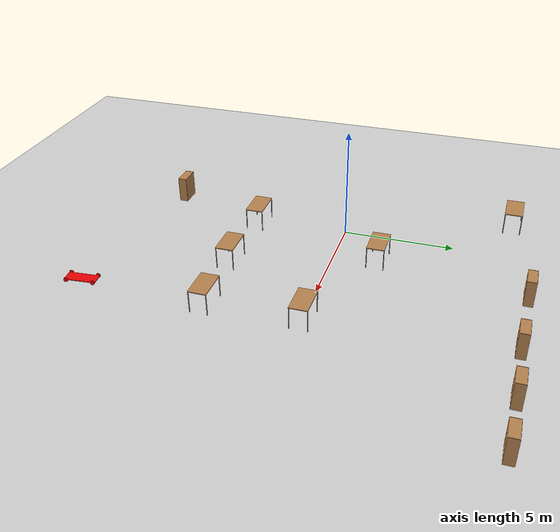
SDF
<sdf version="1.6">
 <world name="default">
  <model name="ground_plane">
   <static>1</static>
   <link name="link">
    <collision name="collision">
     <geometry><plane><normal>0 0 1</normal><size>100 100</size></plane></geometry>
     <surface><friction><ode><mu>100</mu><mu2>50</mu2></ode></friction></surface>
    </collision>
    <visual name="visual">
     <cast_shadows>0</cast_shadows>
     <geometry><plane><normal>0 0 1</normal><size>100 100</size></plane></geometry>
     <material>
      <script><uri>file://media/materials/scripts/gazebo.material</uri><name>Gazebo/Grey</name></script>
     </material>
    </visual>
   </link>
  </model>
  <model name="cart_2">
   <link name="link_0">
    <pose>0.002043 -1e-06 0 0 -0 0</pose>
    <inertial>
     <mass>0.0253075</mass>
     <inertia>
      <ixx>0.00062948</ixx>
      <ixy>0</ixy>
      <ixz>0</ixz>
      <iyy>0.00421325</iyy>
      <iyz>0</iyz>
      <izz>0.00483818</izz>
     </inertia>
    </inertial>
    <visual name="visual">
     <geometry><box><size>1.41306 0.545344 0.032853</size></box></geometry>
     <material>
      <lighting>1</lighting>
      <script><uri>file://media/materials/scripts/gazebo.material</uri><name>Gazebo/Grey</name></script>
      <ambient>0.9 0.002 0 1</ambient>
      <diffuse>0.9 0.002 0.01 0.9</diffuse>
      <specular>0.01 0.01 0.01 1</specular>
      <emissive>0 0 0 1</emissive>
      <shader type="vertex"><normal_map>__default__</normal_map></shader>
     </material>
    </visual>
    <collision name="collision">
     <geometry><box><size>1.41306 0.545344 0.032853</size></box></geometry>
     <surface>
      <friction>
       <ode><mu>1</mu><mu2>1</mu2><fdir1>0 0 0</fdir1><slip1>0</slip1><slip2>0</slip2></ode>
       <torsional>
        <coefficient>1</coefficient>
        <patch_radius>0</patch_radius>
        <surface_radius>0</surface_radius>
        <use_patch_radius>1</use_patch_radius>
        <ode><slip>0</slip></ode>
       </torsional>
      </friction>
      <bounce><restitution_coefficient>0</restitution_coefficient><threshold>1e+06</threshold></bounce>
      <contact>
       <collide_without_contact>0</collide_without_contact>
       <collide_without_contact_bitmask>1</collide_without_contact_bitmask>
       <collide_bitmask>1</collide_bitmask>
       <ode>
        <soft_cfm>0</soft_cfm>
        <soft_erp>0.2</soft_erp>
        <kp>1e+13</kp>
        <kd>1</kd>
        <max_vel>0.01</max_vel>
        <min_depth>0</min_depth>
       </ode>
       <bullet>
        <split_impulse>1</split_impulse>
        <split_impulse_penetration_threshold>-0.01</split_impulse_penetration_threshold>
        <soft_cfm>0</soft_cfm>
        <soft_erp>0.2</soft_erp>
        <kp>1e+13</kp>
        <kd>1</kd>
       </bullet>
      </contact>
     </surface>
    </collision>
   </link>
   <link name="link_1">
    <pose>0.598738 -0.289052 0 -1.55276 0 0</pose>
    <inertial>
     <mass>0.00115815</mass>
     <inertia>
      <ixx>2.95396e-06</ixx>
      <ixy>0</ixy>
      <ixz>0</ixz>
      <iyy>2.95396e-06</iyy>
      <iyz>0</iyz>
      <izz>5.7496e-06</izz>
     </inertia>
    </inertial>
    <visual name="visual">
     <geometry><cylinder><radius>0.0996172</radius><length>0.0291706</length></cylinder></geometry>
     <material>
      <lighting>1</lighting>
      <script><uri>file://media/materials/scripts/gazebo.material</uri><name>Gazebo/Grey</name></script>
      <ambient>0.9 0.002 0 1</ambient>
      <diffuse>0.9 0.002 0.01 0.9</diffuse>
      <specular>0.01 0.01 0.01 1</specular>
      <emissive>0 0 0 1</emissive>
      <shader type="vertex"><normal_map>__default__</normal_map></shader>
     </material>
    </visual>
    <collision name="collision">
     <geometry><cylinder><radius>0.099617</radius><length>0.029171</length></cylinder></geometry>
     <surface>
      <friction>
       <ode><mu>1</mu><mu2>1</mu2><fdir1>0 0 0</fdir1><slip1>0</slip1><slip2>0</slip2></ode>
       <torsional>
        <coefficient>1</coefficient>
        <patch_radius>0</patch_radius>
        <surface_radius>0</surface_radius>
        <use_patch_radius>1</use_patch_radius>
        <ode><slip>0</slip></ode>
       </torsional>
      </friction>
      <bounce><restitution_coefficient>0</restitution_coefficient><threshold>1e+06</threshold></bounce>
      <contact>
       <collide_without_contact>0</collide_without_contact>
       <collide_without_contact_bitmask>1</collide_without_contact_bitmask>
       <collide_bitmask>1</collide_bitmask>
       <ode>
        <soft_cfm>0</soft_cfm>
        <soft_erp>0.2</soft_erp>
        <kp>1e+13</kp>
        <kd>1</kd>
        <max_vel>0.01</max_vel>
        <min_depth>0</min_depth>
       </ode>
       <bullet>
        <split_impulse>1</split_impulse>
        <split_impulse_penetration_threshold>-0.01</split_impulse_penetration_threshold>
        <soft_cfm>0</soft_cfm>
        <soft_erp>0.2</soft_erp>
        <kp>1e+13</kp>
        <kd>1</kd>
       </bullet>
      </contact>
     </surface>
    </collision>
   </link>
   <link name="link_1_clone">
    <pose>-0.604867 0.289051 0 -1.55276 0 0</pose>
    <inertial>
     <mass>0.00115815</mass>
     <inertia>
      <ixx>2.95396e-06</ixx>
      <ixy>0</ixy>
      <ixz>0</ixz>
      <iyy>2.95396e-06</iyy>
      <iyz>0</iyz>
      <izz>5.7496e-06</izz>
     </inertia>
    </inertial>
    <visual name="visual">
     <geometry><cylinder><radius>0.0996172</radius><length>0.0291706</length></cylinder></geometry>
     <material>
      <lighting>1</lighting>
      <script><uri>file://media/materials/scripts/gazebo.material</uri><name>Gazebo/Grey</name></script>
      <ambient>0.9 0.002 0 1</ambient>
      <diffuse>0.9 0.002 0.01 0.9</diffuse>
      <specular>0.01 0.01 0.01 1</specular>
      <emissive>0 0 0 1</emissive>
      <shader type="vertex"><normal_map>__default__</normal_map></shader>
     </material>
    </visual>
    <collision name="collision">
     <geometry><cylinder><radius>0.099617</radius><length>0.029171</length></cylinder></geometry>
     <surface>
      <friction>
       <ode><mu>1</mu><mu2>1</mu2><fdir1>0 0 0</fdir1><slip1>0</slip1><slip2>0</slip2></ode>
       <torsional>
        <coefficient>1</coefficient>
        <patch_radius>0</patch_radius>
        <surface_radius>0</surface_radius>
        <use_patch_radius>1</use_patch_radius>
        <ode><slip>0</slip></ode>
       </torsional>
      </friction>
      <bounce><restitution_coefficient>0</restitution_coefficient><threshold>1e+06</threshold></bounce>
      <contact>
       <collide_without_contact>0</collide_without_contact>
       <collide_without_contact_bitmask>1</collide_without_contact_bitmask>
       <collide_bitmask>1</collide_bitmask>
       <ode>
        <soft_cfm>0</soft_cfm>
        <soft_erp>0.2</soft_erp>
        <kp>1e+13</kp>
        <kd>1</kd>
        <max_vel>0.01</max_vel>
        <min_depth>0</min_depth>
       </ode>
       <bullet>
        <split_impulse>1</split_impulse>
        <split_impulse_penetration_threshold>-0.01</split_impulse_penetration_threshold>
        <soft_cfm>0</soft_cfm>
        <soft_erp>0.2</soft_erp>
        <kp>1e+13</kp>
        <kd>1</kd>
       </bullet>
      </contact>
     </surface>
    </collision>
   </link>
   <link name="link_1_clone_0">
    <pose>-0.604867 -0.289052 0 -1.55276 0 0</pose>
    <inertial>
     <mass>0.00115815</mass>
     <inertia>
      <ixx>2.95396e-06</ixx>
      <ixy>0</ixy>
      <ixz>0</ixz>
      <iyy>2.95396e-06</iyy>
      <iyz>0</iyz>
      <izz>5.7496e-06</izz>
     </inertia>
    </inertial>
    <visual name="visual">
     <geometry><cylinder><radius>0.0996172</radius><length>0.0291706</length></cylinder></geometry>
     <material>
      <lighting>1</lighting>
      <script><uri>file://media/materials/scripts/gazebo.material</uri><name>Gazebo/Grey</name></script>
      <ambient>0.9 0.002 0 1</ambient>
      <diffuse>0.9 0.002 0.01 0.9</diffuse>
      <specular>0.01 0.01 0.01 1</specular>
      <emissive>0 0 0 1</emissive>
      <shader type="vertex"><normal_map>__default__</normal_map></shader>
     </material>
    </visual>
    <collision name="collision">
     <geometry><cylinder><radius>0.099617</radius><length>0.029171</length></cylinder></geometry>
     <surface>
      <friction>
       <ode><mu>1</mu><mu2>1</mu2><fdir1>0 0 0</fdir1><slip1>0</slip1><slip2>0</slip2></ode>
       <torsional>
        <coefficient>1</coefficient>
        <patch_radius>0</patch_radius>
        <surface_radius>0</surface_radius>
        <use_patch_radius>1</use_patch_radius>
        <ode><slip>0</slip></ode>
       </torsional>
      </friction>
      <bounce><restitution_coefficient>0</restitution_coefficient><threshold>1e+06</threshold></bounce>
      <contact>
       <collide_without_contact>0</collide_without_contact>
       <collide_without_contact_bitmask>1</collide_without_contact_bitmask>
       <collide_bitmask>1</collide_bitmask>
       <ode>
        <soft_cfm>0</soft_cfm>
        <soft_erp>0.2</soft_erp>
        <kp>1e+13</kp>
        <kd>1</kd>
        <max_vel>0.01</max_vel>
        <min_depth>0</min_depth>
       </ode>
       <bullet>
        <split_impulse>1</split_impulse>
        <split_impulse_penetration_threshold>-0.01</split_impulse_penetration_threshold>
        <soft_cfm>0</soft_cfm>
        <soft_erp>0.2</soft_erp>
        <kp>1e+13</kp>
        <kd>1</kd>
       </bullet>
      </contact>
     </surface>
    </collision>
   </link>
   <link name="link_1_clone_1">
    <pose>0.608953 0.289051 0 -1.55276 0 0</pose>
    <inertial>
     <mass>0.00115815</mass>
     <inertia>
      <ixx>2.95396e-06</ixx>
      <ixy>0</ixy>
      <ixz>0</ixz>
      <iyy>2.95396e-06</iyy>
      <iyz>0</iyz>
      <izz>5.7496e-06</izz>
     </inertia>
    </inertial>
    <visual name="visual">
     <geometry><cylinder><radius>0.0996172</radius><length>0.0291706</length></cylinder></geometry>
     <material>
      <lighting>1</lighting>
      <script><uri>file://media/materials/scripts/gazebo.material</uri><name>Gazebo/Grey</name></script>
      <ambient>0.9 0.002 0 1</ambient>
      <diffuse>0.9 0.002 0.01 0.9</diffuse>
      <specular>0.01 0.01 0.01 1</specular>
      <emissive>0 0 0 1</emissive>
      <shader type="vertex"><normal_map>__default__</normal_map></shader>
     </material>
    </visual>
    <collision name="collision">
     <geometry><cylinder><radius>0.099617</radius><length>0.029171</length></cylinder></geometry>
     <surface>
      <friction>
       <ode><mu>1</mu><mu2>1</mu2><fdir1>0 0 0</fdir1><slip1>0</slip1><slip2>0</slip2></ode>
       <torsional>
        <coefficient>1</coefficient>
        <patch_radius>0</patch_radius>
        <surface_radius>0</surface_radius>
        <use_patch_radius>1</use_patch_radius>
        <ode><slip>0</slip></ode>
       </torsional>
      </friction>
      <bounce><restitution_coefficient>0</restitution_coefficient><threshold>1e+06</threshold></bounce>
      <contact>
       <collide_without_contact>0</collide_without_contact>
       <collide_without_contact_bitmask>1</collide_without_contact_bitmask>
       <collide_bitmask>1</collide_bitmask>
       <ode>
        <soft_cfm>0</soft_cfm>
        <soft_erp>0.2</soft_erp>
        <kp>1e+13</kp>
        <kd>1</kd>
        <max_vel>0.01</max_vel>
        <min_depth>0</min_depth>
       </ode>
       <bullet>
        <split_impulse>1</split_impulse>
        <split_impulse_penetration_threshold>-0.01</split_impulse_penetration_threshold>
        <soft_cfm>0</soft_cfm>
        <soft_erp>0.2</soft_erp>
        <kp>1e+13</kp>
        <kd>1</kd>
       </bullet>
      </contact>
     </surface>
    </collision>
   </link>
   <joint name="link_0_JOINT_0" type="revolute">
    <parent>link_0</parent>
    <child>link_1</child>
    <axis>
     <xyz>0 0 1</xyz>
     <use_parent_model_frame>0</use_parent_model_frame>
     <limit>
      <lower>-1.79769e+308</lower>
      <upper>1.79769e+308</upper>
      <effort>-1</effort>
      <velocity>-1</velocity>
     </limit>
     <dynamics>
      <spring_reference>0</spring_reference>
      <spring_stiffness>0</spring_stiffness>
      <damping>0</damping>
     </dynamics>
    </axis>
    <physics>
     <ode><limit><cfm>0</cfm><erp>0.2</erp></limit><suspension><cfm>0</cfm><erp>0.2</erp></suspension></ode>
    </physics>
   </joint>
   <joint name="link_0_JOINT_1" type="revolute">
    <parent>link_0</parent>
    <child>link_1_clone_1</child>
    <axis>
     <xyz>0 0 1</xyz>
     <use_parent_model_frame>0</use_parent_model_frame>
     <limit>
      <lower>-1.79769e+308</lower>
      <upper>1.79769e+308</upper>
      <effort>-1</effort>
      <velocity>-1</velocity>
     </limit>
     <dynamics>
      <spring_reference>0</spring_reference>
      <spring_stiffness>0</spring_stiffness>
      <damping>0</damping>
     </dynamics>
    </axis>
    <physics>
     <ode><limit><cfm>0</cfm><erp>0.2</erp></limit><suspension><cfm>0</cfm><erp>0.2</erp></suspension></ode>
    </physics>
   </joint>
   <joint name="link_0_JOINT_2" type="revolute">
    <parent>link_0</parent>
    <child>link_1_clone_0</child>
    <axis>
     <xyz>0 0 1</xyz>
     <use_parent_model_frame>0</use_parent_model_frame>
     <limit>
      <lower>-1.79769e+308</lower>
      <upper>1.79769e+308</upper>
      <effort>-1</effort>
      <velocity>-1</velocity>
     </limit>
     <dynamics>
      <spring_reference>0</spring_reference>
      <spring_stiffness>0</spring_stiffness>
      <damping>0</damping>
     </dynamics>
    </axis>
    <physics>
     <ode><limit><cfm>0</cfm><erp>0.2</erp></limit><suspension><cfm>0</cfm><erp>0.2</erp></suspension></ode>
    </physics>
   </joint>
   <joint name="link_0_JOINT_3" type="revolute">
    <parent>link_0</parent>
    <child>link_1_clone</child>
    <axis>
     <xyz>0 0 1</xyz>
     <use_parent_model_frame>0</use_parent_model_frame>
     <limit>
      <lower>-1.79769e+308</lower>
      <upper>1.79769e+308</upper>
      <effort>-1</effort>
      <velocity>-1</velocity>
     </limit>
     <dynamics>
      <spring_reference>0</spring_reference>
      <spring_stiffness>0</spring_stiffness>
      <damping>0</damping>
     </dynamics>
    </axis>
    <physics>
     <ode><limit><cfm>0</cfm><erp>0.2</erp></limit><suspension><cfm>0</cfm><erp>0.2</erp></suspension></ode>
    </physics>
   </joint>
   <static>0</static>
   <pose>6.99332 -9.78018 0.099853 3.14156 -0 -1.48266</pose>
  </model>
  <model name="bookshelf_clone">
   <static>1</static>
   <link name="link">
    <inertial><mass>1</mass></inertial>
    <collision name="back">
     <pose>0 0.005 0.6 0 -0 0</pose>
     <geometry><box><size>0.9 0.01 1.2</size></box></geometry>
    </collision>
    <visual name="visual1">
     <pose>0 0.005 0.6 0 -0 0</pose>
     <geometry><box><size>0.9 0.01 1.2</size></box></geometry>
     <material>
      <script><uri>file://media/materials/scripts/gazebo.material</uri><name>Gazebo/Wood</name></script>
     </material>
    </visual>
    <collision name="left_side">
     <pose>0.45 -0.195 0.6 0 -0 0</pose>
     <geometry><box><size>0.02 0.4 1.2</size></box></geometry>
    </collision>
    <visual name="visual2">
     <pose>0.45 -0.195 0.6 0 -0 0</pose>
     <geometry><box><size>0.02 0.4 1.2</size></box></geometry>
     <material>
      <script><uri>file://media/materials/scripts/gazebo.material</uri><name>Gazebo/Wood</name></script>
     </material>
    </visual>
    <collision name="right_side">
     <pose>-0.45 -0.195 0.6 0 -0 0</pose>
     <geometry><box><size>0.02 0.4 1.2</size></box></geometry>
    </collision>
    <visual name="visual3">
     <pose>-0.45 -0.195 0.6 0 -0 0</pose>
     <geometry><box><size>0.02 0.4 1.2</size></box></geometry>
     <material>
      <script><uri>file://media/materials/scripts/gazebo.material</uri><name>Gazebo/Wood</name></script>
     </material>
    </visual>
    <collision name="bottom">
     <pose>0 -0.195 0.03 0 -0 0</pose>
     <geometry><box><size>0.88 0.4 0.06</size></box></geometry>
    </collision>
    <visual name="visual4">
     <pose>0 -0.195 0.03 0 -0 0</pose>
     <geometry><box><size>0.88 0.4 0.06</size></box></geometry>
     <material>
      <script><uri>file://media/materials/scripts/gazebo.material</uri><name>Gazebo/Wood</name></script>
     </material>
    </visual>
    <collision name="top">
     <pose>0 -0.195 1.19 0 -0 0</pose>
     <geometry><box><size>0.88 0.4 0.02</size></box></geometry>
    </collision>
    <visual name="visual5">
     <pose>0 -0.195 1.19 0 -0 0</pose>
     <geometry><box><size>0.88 0.4 0.02</size></box></geometry>
     <material>
      <script><uri>file://media/materials/scripts/gazebo.material</uri><name>Gazebo/Wood</name></script>
     </material>
    </visual>
    <collision name="low_shelf">
     <pose>0 -0.195 0.43 0 -0 0</pose>
     <geometry><box><size>0.88 0.4 0.02</size></box></geometry>
    </collision>
    <visual name="visual6">
     <pose>0 -0.195 0.43 0 -0 0</pose>
     <geometry><box><size>0.88 0.4 0.02</size></box></geometry>
     <material>
      <script><uri>file://media/materials/scripts/gazebo.material</uri><name>Gazebo/Wood</name></script>
     </material>
    </visual>
    <collision name="high_shelf">
     <pose>0 -0.195 0.8 0 -0 0</pose>
     <geometry><box><size>0.88 0.4 0.02</size></box></geometry>
    </collision>
    <visual name="visual7">
     <pose>0 -0.195 0.8 0 -0 0</pose>
     <geometry><box><size>0.88 0.4 0.02</size></box></geometry>
     <material>
      <script><uri>file://media/materials/scripts/gazebo.material</uri><name>Gazebo/Wood</name></script>
     </material>
    </visual>
   </link>
   <pose>11.7736 8.51427 0 0 -0 0</pose>
  </model>
  <model name="bookshelf_clone_0">
   <static>1</static>
   <link name="link">
    <inertial><mass>1</mass></inertial>
    <collision name="back">
     <pose>0 0.005 0.6 0 -0 0</pose>
     <geometry><box><size>0.9 0.01 1.2</size></box></geometry>
    </collision>
    <visual name="visual1">
     <pose>0 0.005 0.6 0 -0 0</pose>
     <geometry><box><size>0.9 0.01 1.2</size></box></geometry>
     <material>
      <script><uri>file://media/materials/scripts/gazebo.material</uri><name>Gazebo/Wood</name></script>
     </material>
    </visual>
    <collision name="left_side">
     <pose>0.45 -0.195 0.6 0 -0 0</pose>
     <geometry><box><size>0.02 0.4 1.2</size></box></geometry>
    </collision>
    <visual name="visual2">
     <pose>0.45 -0.195 0.6 0 -0 0</pose>
     <geometry><box><size>0.02 0.4 1.2</size></box></geometry>
     <material>
      <script><uri>file://media/materials/scripts/gazebo.material</uri><name>Gazebo/Wood</name></script>
     </material>
    </visual>
    <collision name="right_side">
     <pose>-0.45 -0.195 0.6 0 -0 0</pose>
     <geometry><box><size>0.02 0.4 1.2</size></box></geometry>
    </collision>
    <visual name="visual3">
     <pose>-0.45 -0.195 0.6 0 -0 0</pose>
     <geometry><box><size>0.02 0.4 1.2</size></box></geometry>
     <material>
      <script><uri>file://media/materials/scripts/gazebo.material</uri><name>Gazebo/Wood</name></script>
     </material>
    </visual>
    <collision name="bottom">
     <pose>0 -0.195 0.03 0 -0 0</pose>
     <geometry><box><size>0.88 0.4 0.06</size></box></geometry>
    </collision>
    <visual name="visual4">
     <pose>0 -0.195 0.03 0 -0 0</pose>
     <geometry><box><size>0.88 0.4 0.06</size></box></geometry>
     <material>
      <script><uri>file://media/materials/scripts/gazebo.material</uri><name>Gazebo/Wood</name></script>
     </material>
    </visual>
    <collision name="top">
     <pose>0 -0.195 1.19 0 -0 0</pose>
     <geometry><box><size>0.88 0.4 0.02</size></box></geometry>
    </collision>
    <visual name="visual5">
     <pose>0 -0.195 1.19 0 -0 0</pose>
     <geometry><box><size>0.88 0.4 0.02</size></box></geometry>
     <material>
      <script><uri>file://media/materials/scripts/gazebo.material</uri><name>Gazebo/Wood</name></script>
     </material>
    </visual>
    <collision name="low_shelf">
     <pose>0 -0.195 0.43 0 -0 0</pose>
     <geometry><box><size>0.88 0.4 0.02</size></box></geometry>
    </collision>
    <visual name="visual6">
     <pose>0 -0.195 0.43 0 -0 0</pose>
     <geometry><box><size>0.88 0.4 0.02</size></box></geometry>
     <material>
      <script><uri>file://media/materials/scripts/gazebo.material</uri><name>Gazebo/Wood</name></script>
     </material>
    </visual>
    <collision name="high_shelf">
     <pose>0 -0.195 0.8 0 -0 0</pose>
     <geometry><box><size>0.88 0.4 0.02</size></box></geometry>
    </collision>
    <visual name="visual7">
     <pose>0 -0.195 0.8 0 -0 0</pose>
     <geometry><box><size>0.88 0.4 0.02</size></box></geometry>
     <material>
      <script><uri>file://media/materials/scripts/gazebo.material</uri><name>Gazebo/Wood</name></script>
     </material>
    </visual>
   </link>
   <pose>9.23803 8.57949 0 0 -0 0</pose>
  </model>
  <model name="bookshelf_clone_0_clone">
   <static>1</static>
   <link name="link">
    <inertial><mass>1</mass></inertial>
    <collision name="back">
     <pose>0 0.005 0.6 0 -0 0</pose>
     <geometry><box><size>0.9 0.01 1.2</size></box></geometry>
    </collision>
    <visual name="visual1">
     <pose>0 0.005 0.6 0 -0 0</pose>
     <geometry><box><size>0.9 0.01 1.2</size></box></geometry>
     <material>
      <script><uri>file://media/materials/scripts/gazebo.material</uri><name>Gazebo/Wood</name></script>
     </material>
    </visual>
    <collision name="left_side">
     <pose>0.45 -0.195 0.6 0 -0 0</pose>
     <geometry><box><size>0.02 0.4 1.2</size></box></geometry>
    </collision>
    <visual name="visual2">
     <pose>0.45 -0.195 0.6 0 -0 0</pose>
     <geometry><box><size>0.02 0.4 1.2</size></box></geometry>
     <material>
      <script><uri>file://media/materials/scripts/gazebo.material</uri><name>Gazebo/Wood</name></script>
     </material>
    </visual>
    <collision name="right_side">
     <pose>-0.45 -0.195 0.6 0 -0 0</pose>
     <geometry><box><size>0.02 0.4 1.2</size></box></geometry>
    </collision>
    <visual name="visual3">
     <pose>-0.45 -0.195 0.6 0 -0 0</pose>
     <geometry><box><size>0.02 0.4 1.2</size></box></geometry>
     <material>
      <script><uri>file://media/materials/scripts/gazebo.material</uri><name>Gazebo/Wood</name></script>
     </material>
    </visual>
    <collision name="bottom">
     <pose>0 -0.195 0.03 0 -0 0</pose>
     <geometry><box><size>0.88 0.4 0.06</size></box></geometry>
    </collision>
    <visual name="visual4">
     <pose>0 -0.195 0.03 0 -0 0</pose>
     <geometry><box><size>0.88 0.4 0.06</size></box></geometry>
     <material>
      <script><uri>file://media/materials/scripts/gazebo.material</uri><name>Gazebo/Wood</name></script>
     </material>
    </visual>
    <collision name="top">
     <pose>0 -0.195 1.19 0 -0 0</pose>
     <geometry><box><size>0.88 0.4 0.02</size></box></geometry>
    </collision>
    <visual name="visual5">
     <pose>0 -0.195 1.19 0 -0 0</pose>
     <geometry><box><size>0.88 0.4 0.02</size></box></geometry>
     <material>
      <script><uri>file://media/materials/scripts/gazebo.material</uri><name>Gazebo/Wood</name></script>
     </material>
    </visual>
    <collision name="low_shelf">
     <pose>0 -0.195 0.43 0 -0 0</pose>
     <geometry><box><size>0.88 0.4 0.02</size></box></geometry>
    </collision>
    <visual name="visual6">
     <pose>0 -0.195 0.43 0 -0 0</pose>
     <geometry><box><size>0.88 0.4 0.02</size></box></geometry>
     <material>
      <script><uri>file://media/materials/scripts/gazebo.material</uri><name>Gazebo/Wood</name></script>
     </material>
    </visual>
    <collision name="high_shelf">
     <pose>0 -0.195 0.8 0 -0 0</pose>
     <geometry><box><size>0.88 0.4 0.02</size></box></geometry>
    </collision>
    <visual name="visual7">
     <pose>0 -0.195 0.8 0 -0 0</pose>
     <geometry><box><size>0.88 0.4 0.02</size></box></geometry>
     <material>
      <script><uri>file://media/materials/scripts/gazebo.material</uri><name>Gazebo/Wood</name></script>
     </material>
    </visual>
   </link>
   <pose>6.50515 8.57234 0 0 -0 0</pose>
  </model>
  <model name="bookshelf_clone_0_clone_0">
   <static>1</static>
   <link name="link">
    <inertial><mass>1</mass></inertial>
    <collision name="back">
     <pose>0 0.005 0.6 0 -0 0</pose>
     <geometry><box><size>0.9 0.01 1.2</size></box></geometry>
    </collision>
    <visual name="visual1">
     <pose>0 0.005 0.6 0 -0 0</pose>
     <geometry><box><size>0.9 0.01 1.2</size></box></geometry>
     <material>
      <script><uri>file://media/materials/scripts/gazebo.material</uri><name>Gazebo/Wood</name></script>
     </material>
    </visual>
    <collision name="left_side">
     <pose>0.45 -0.195 0.6 0 -0 0</pose>
     <geometry><box><size>0.02 0.4 1.2</size></box></geometry>
    </collision>
    <visual name="visual2">
     <pose>0.45 -0.195 0.6 0 -0 0</pose>
     <geometry><box><size>0.02 0.4 1.2</size></box></geometry>
     <material>
      <script><uri>file://media/materials/scripts/gazebo.material</uri><name>Gazebo/Wood</name></script>
     </material>
    </visual>
    <collision name="right_side">
     <pose>-0.45 -0.195 0.6 0 -0 0</pose>
     <geometry><box><size>0.02 0.4 1.2</size></box></geometry>
    </collision>
    <visual name="visual3">
     <pose>-0.45 -0.195 0.6 0 -0 0</pose>
     <geometry><box><size>0.02 0.4 1.2</size></box></geometry>
     <material>
      <script><uri>file://media/materials/scripts/gazebo.material</uri><name>Gazebo/Wood</name></script>
     </material>
    </visual>
    <collision name="bottom">
     <pose>0 -0.195 0.03 0 -0 0</pose>
     <geometry><box><size>0.88 0.4 0.06</size></box></geometry>
    </collision>
    <visual name="visual4">
     <pose>0 -0.195 0.03 0 -0 0</pose>
     <geometry><box><size>0.88 0.4 0.06</size></box></geometry>
     <material>
      <script><uri>file://media/materials/scripts/gazebo.material</uri><name>Gazebo/Wood</name></script>
     </material>
    </visual>
    <collision name="top">
     <pose>0 -0.195 1.19 0 -0 0</pose>
     <geometry><box><size>0.88 0.4 0.02</size></box></geometry>
    </collision>
    <visual name="visual5">
     <pose>0 -0.195 1.19 0 -0 0</pose>
     <geometry><box><size>0.88 0.4 0.02</size></box></geometry>
     <material>
      <script><uri>file://media/materials/scripts/gazebo.material</uri><name>Gazebo/Wood</name></script>
     </material>
    </visual>
    <collision name="low_shelf">
     <pose>0 -0.195 0.43 0 -0 0</pose>
     <geometry><box><size>0.88 0.4 0.02</size></box></geometry>
    </collision>
    <visual name="visual6">
     <pose>0 -0.195 0.43 0 -0 0</pose>
     <geometry><box><size>0.88 0.4 0.02</size></box></geometry>
     <material>
      <script><uri>file://media/materials/scripts/gazebo.material</uri><name>Gazebo/Wood</name></script>
     </material>
    </visual>
    <collision name="high_shelf">
     <pose>0 -0.195 0.8 0 -0 0</pose>
     <geometry><box><size>0.88 0.4 0.02</size></box></geometry>
    </collision>
    <visual name="visual7">
     <pose>0 -0.195 0.8 0 -0 0</pose>
     <geometry><box><size>0.88 0.4 0.02</size></box></geometry>
     <material>
      <script><uri>file://media/materials/scripts/gazebo.material</uri><name>Gazebo/Wood</name></script>
     </material>
    </visual>
   </link>
   <pose>3.09075 8.67269 0 0 -0 0</pose>
  </model>
  <model name="bookshelf_clone_0_clone_1">
   <static>1</static>
   <link name="link">
    <inertial><mass>1</mass></inertial>
    <collision name="back">
     <pose>0 0.005 0.6 0 -0 0</pose>
     <geometry><box><size>0.9 0.01 1.2</size></box></geometry>
    </collision>
    <visual name="visual1">
     <pose>0 0.005 0.6 0 -0 0</pose>
     <geometry><box><size>0.9 0.01 1.2</size></box></geometry>
     <material>
      <script><uri>file://media/materials/scripts/gazebo.material</uri><name>Gazebo/Wood</name></script>
     </material>
    </visual>
    <collision name="left_side">
     <pose>0.45 -0.195 0.6 0 -0 0</pose>
     <geometry><box><size>0.02 0.4 1.2</size></box></geometry>
    </collision>
    <visual name="visual2">
     <pose>0.45 -0.195 0.6 0 -0 0</pose>
     <geometry><box><size>0.02 0.4 1.2</size></box></geometry>
     <material>
      <script><uri>file://media/materials/scripts/gazebo.material</uri><name>Gazebo/Wood</name></script>
     </material>
    </visual>
    <collision name="right_side">
     <pose>-0.45 -0.195 0.6 0 -0 0</pose>
     <geometry><box><size>0.02 0.4 1.2</size></box></geometry>
    </collision>
    <visual name="visual3">
     <pose>-0.45 -0.195 0.6 0 -0 0</pose>
     <geometry><box><size>0.02 0.4 1.2</size></box></geometry>
     <material>
      <script><uri>file://media/materials/scripts/gazebo.material</uri><name>Gazebo/Wood</name></script>
     </material>
    </visual>
    <collision name="bottom">
     <pose>0 -0.195 0.03 0 -0 0</pose>
     <geometry><box><size>0.88 0.4 0.06</size></box></geometry>
    </collision>
    <visual name="visual4">
     <pose>0 -0.195 0.03 0 -0 0</pose>
     <geometry><box><size>0.88 0.4 0.06</size></box></geometry>
     <material>
      <script><uri>file://media/materials/scripts/gazebo.material</uri><name>Gazebo/Wood</name></script>
     </material>
    </visual>
    <collision name="top">
     <pose>0 -0.195 1.19 0 -0 0</pose>
     <geometry><box><size>0.88 0.4 0.02</size></box></geometry>
    </collision>
    <visual name="visual5">
     <pose>0 -0.195 1.19 0 -0 0</pose>
     <geometry><box><size>0.88 0.4 0.02</size></box></geometry>
     <material>
      <script><uri>file://media/materials/scripts/gazebo.material</uri><name>Gazebo/Wood</name></script>
     </material>
    </visual>
    <collision name="low_shelf">
     <pose>0 -0.195 0.43 0 -0 0</pose>
     <geometry><box><size>0.88 0.4 0.02</size></box></geometry>
    </collision>
    <visual name="visual6">
     <pose>0 -0.195 0.43 0 -0 0</pose>
     <geometry><box><size>0.88 0.4 0.02</size></box></geometry>
     <material>
      <script><uri>file://media/materials/scripts/gazebo.material</uri><name>Gazebo/Wood</name></script>
     </material>
    </visual>
    <collision name="high_shelf">
     <pose>0 -0.195 0.8 0 -0 0</pose>
     <geometry><box><size>0.88 0.4 0.02</size></box></geometry>
    </collision>
    <visual name="visual7">
     <pose>0 -0.195 0.8 0 -0 0</pose>
     <geometry><box><size>0.88 0.4 0.02</size></box></geometry>
     <material>
      <script><uri>file://media/materials/scripts/gazebo.material</uri><name>Gazebo/Wood</name></script>
     </material>
    </visual>
   </link>
   <pose>-1.14587 -8.36458 0 0 -0 0</pose>
  </model>
  <model name="table">
   <static>0</static>
   <link name="link">
    <collision name="surface">
     <pose>0 0 1 0 -0 0</pose>
     <geometry><box><size>1.5 0.8 0.03</size></box></geometry>
     <surface><friction><ode><mu>0.6</mu><mu2>0.6</mu2></ode></friction></surface>
    </collision>
    <visual name="visual1">
     <pose>0 0 1 0 -0 0</pose>
     <geometry><box><size>1.4 0.8 0.04</size></box></geometry>
     <material>
      <script><uri>file://media/materials/scripts/gazebo.material</uri><name>Gazebo/Wood</name></script>
     </material>
    </visual>
    <collision name="front_left_leg">
     <pose>0.68 0.38 0.5 0 -0 0</pose>
     <geometry><cylinder><radius>0.02</radius><length>1</length></cylinder></geometry>
    </collision>
    <visual name="front_left_leg">
     <pose>0.68 0.38 0.5 0 -0 0</pose>
     <geometry><cylinder><radius>0.02</radius><length>1</length></cylinder></geometry>
     <material>
      <script><uri>file://media/materials/scripts/gazebo.material</uri><name>Gazebo/Grey</name></script>
     </material>
    </visual>
    <collision name="front_right_leg">
     <pose>0.68 -0.38 0.5 0 -0 0</pose>
     <geometry><cylinder><radius>0.02</radius><length>1</length></cylinder></geometry>
    </collision>
    <visual name="front_right_leg">
     <pose>0.68 -0.38 0.5 0 -0 0</pose>
     <geometry><cylinder><radius>0.02</radius><length>1</length></cylinder></geometry>
     <material>
      <script><uri>file://media/materials/scripts/gazebo.material</uri><name>Gazebo/Grey</name></script>
     </material>
    </visual>
    <collision name="back_right_leg">
     <pose>-0.68 -0.38 0.5 0 -0 0</pose>
     <geometry><cylinder><radius>0.02</radius><length>1</length></cylinder></geometry>
    </collision>
    <visual name="back_right_leg">
     <pose>-0.68 -0.38 0.5 0 -0 0</pose>
     <geometry><cylinder><radius>0.02</radius><length>1</length></cylinder></geometry>
     <material>
      <script><uri>file://media/materials/scripts/gazebo.material</uri><name>Gazebo/Grey</name></script>
     </material>
    </visual>
    <collision name="back_left_leg">
     <pose>-0.68 0.38 0.5 0 -0 0</pose>
     <geometry><cylinder><radius>0.02</radius><length>1</length></cylinder></geometry>
    </collision>
    <visual name="back_left_leg">
     <pose>-0.68 0.38 0.5 0 -0 0</pose>
     <geometry><cylinder><radius>0.02</radius><length>1</length></cylinder></geometry>
     <material>
      <script><uri>file://media/materials/scripts/gazebo.material</uri><name>Gazebo/Grey</name></script>
     </material>
    </visual>
    <inertial>
     <inertia><ixx>1</ixx><ixy>0</ixy><ixz>0</ixz><iyy>1</iyy><iyz>0</iyz><izz>1</izz></inertia>
     <mass>1</mass>
    </inertial>
   </link>
   <pose>7.10855 -4.07529 -1e-06 0 1e-06 0</pose>
  </model>
  <model name="table_clone">
   <static>0</static>
   <link name="link">
    <collision name="surface">
     <pose>0 0 1 0 -0 0</pose>
     <geometry><box><size>1.5 0.8 0.03</size></box></geometry>
     <surface><friction><ode><mu>0.6</mu><mu2>0.6</mu2></ode></friction></surface>
    </collision>
    <visual name="visual1">
     <pose>0 0 1 0 -0 0</pose>
     <geometry><box><size>1.4 0.8 0.04</size></box></geometry>
     <material>
      <script><uri>file://media/materials/scripts/gazebo.material</uri><name>Gazebo/Wood</name></script>
     </material>
    </visual>
    <collision name="front_left_leg">
     <pose>0.68 0.38 0.5 0 -0 0</pose>
     <geometry><cylinder><radius>0.02</radius><length>1</length></cylinder></geometry>
    </collision>
    <visual name="front_left_leg">
     <pose>0.68 0.38 0.5 0 -0 0</pose>
     <geometry><cylinder><radius>0.02</radius><length>1</length></cylinder></geometry>
     <material>
      <script><uri>file://media/materials/scripts/gazebo.material</uri><name>Gazebo/Grey</name></script>
     </material>
    </visual>
    <collision name="front_right_leg">
     <pose>0.68 -0.38 0.5 0 -0 0</pose>
     <geometry><cylinder><radius>0.02</radius><length>1</length></cylinder></geometry>
    </collision>
    <visual name="front_right_leg">
     <pose>0.68 -0.38 0.5 0 -0 0</pose>
     <geometry><cylinder><radius>0.02</radius><length>1</length></cylinder></geometry>
     <material>
      <script><uri>file://media/materials/scripts/gazebo.material</uri><name>Gazebo/Grey</name></script>
     </material>
    </visual>
    <collision name="back_right_leg">
     <pose>-0.68 -0.38 0.5 0 -0 0</pose>
     <geometry><cylinder><radius>0.02</radius><length>1</length></cylinder></geometry>
    </collision>
    <visual name="back_right_leg">
     <pose>-0.68 -0.38 0.5 0 -0 0</pose>
     <geometry><cylinder><radius>0.02</radius><length>1</length></cylinder></geometry>
     <material>
      <script><uri>file://media/materials/scripts/gazebo.material</uri><name>Gazebo/Grey</name></script>
     </material>
    </visual>
    <collision name="back_left_leg">
     <pose>-0.68 0.38 0.5 0 -0 0</pose>
     <geometry><cylinder><radius>0.02</radius><length>1</length></cylinder></geometry>
    </collision>
    <visual name="back_left_leg">
     <pose>-0.68 0.38 0.5 0 -0 0</pose>
     <geometry><cylinder><radius>0.02</radius><length>1</length></cylinder></geometry>
     <material>
      <script><uri>file://media/materials/scripts/gazebo.material</uri><name>Gazebo/Grey</name></script>
     </material>
    </visual>
    <inertial>
     <inertia><ixx>1</ixx><ixy>0</ixy><ixz>0</ixz><iyy>1</iyy><iyz>0</iyz><izz>1</izz></inertia>
     <mass>1</mass>
    </inertial>
   </link>
   <pose>3.7892 -4.26409 -1e-06 0 1e-06 0</pose>
  </model>
  <model name="table_clone_0">
   <static>0</static>
   <link name="link">
    <collision name="surface">
     <pose>0 0 1 0 -0 0</pose>
     <geometry><box><size>1.5 0.8 0.03</size></box></geometry>
     <surface><friction><ode><mu>0.6</mu><mu2>0.6</mu2></ode></friction></surface>
    </collision>
    <visual name="visual1">
     <pose>0 0 1 0 -0 0</pose>
     <geometry><box><size>1.4 0.8 0.04</size></box></geometry>
     <material>
      <script><uri>file://media/materials/scripts/gazebo.material</uri><name>Gazebo/Wood</name></script>
     </material>
    </visual>
    <collision name="front_left_leg">
     <pose>0.68 0.38 0.5 0 -0 0</pose>
     <geometry><cylinder><radius>0.02</radius><length>1</length></cylinder></geometry>
    </collision>
    <visual name="front_left_leg">
     <pose>0.68 0.38 0.5 0 -0 0</pose>
     <geometry><cylinder><radius>0.02</radius><length>1</length></cylinder></geometry>
     <material>
      <script><uri>file://media/materials/scripts/gazebo.material</uri><name>Gazebo/Grey</name></script>
     </material>
    </visual>
    <collision name="front_right_leg">
     <pose>0.68 -0.38 0.5 0 -0 0</pose>
     <geometry><cylinder><radius>0.02</radius><length>1</length></cylinder></geometry>
    </collision>
    <visual name="front_right_leg">
     <pose>0.68 -0.38 0.5 0 -0 0</pose>
     <geometry><cylinder><radius>0.02</radius><length>1</length></cylinder></geometry>
     <material>
      <script><uri>file://media/materials/scripts/gazebo.material</uri><name>Gazebo/Grey</name></script>
     </material>
    </visual>
    <collision name="back_right_leg">
     <pose>-0.68 -0.38 0.5 0 -0 0</pose>
     <geometry><cylinder><radius>0.02</radius><length>1</length></cylinder></geometry>
    </collision>
    <visual name="back_right_leg">
     <pose>-0.68 -0.38 0.5 0 -0 0</pose>
     <geometry><cylinder><radius>0.02</radius><length>1</length></cylinder></geometry>
     <material>
      <script><uri>file://media/materials/scripts/gazebo.material</uri><name>Gazebo/Grey</name></script>
     </material>
    </visual>
    <collision name="back_left_leg">
     <pose>-0.68 0.38 0.5 0 -0 0</pose>
     <geometry><cylinder><radius>0.02</radius><length>1</length></cylinder></geometry>
    </collision>
    <visual name="back_left_leg">
     <pose>-0.68 0.38 0.5 0 -0 0</pose>
     <geometry><cylinder><radius>0.02</radius><length>1</length></cylinder></geometry>
     <material>
      <script><uri>file://media/materials/scripts/gazebo.material</uri><name>Gazebo/Grey</name></script>
     </material>
    </visual>
    <inertial>
     <inertia><ixx>1</ixx><ixy>0</ixy><ixz>0</ixz><iyy>1</iyy><iyz>0</iyz><izz>1</izz></inertia>
     <mass>1</mass>
    </inertial>
   </link>
   <pose>0.272044 -4.17291 -1e-06 0 1e-06 0</pose>
  </model>
  <model name="table_clone_3">
   <static>0</static>
   <link name="link">
    <collision name="surface">
     <pose>0 0 1 0 -0 0</pose>
     <geometry><box><size>1.5 0.8 0.03</size></box></geometry>
     <surface><friction><ode><mu>0.6</mu><mu2>0.6</mu2></ode></friction></surface>
    </collision>
    <visual name="visual1">
     <pose>0 0 1 0 -0 0</pose>
     <geometry><box><size>1.4 0.8 0.04</size></box></geometry>
     <material>
      <script><uri>file://media/materials/scripts/gazebo.material</uri><name>Gazebo/Wood</name></script>
     </material>
    </visual>
    <collision name="front_left_leg">
     <pose>0.68 0.38 0.5 0 -0 0</pose>
     <geometry><cylinder><radius>0.02</radius><length>1</length></cylinder></geometry>
    </collision>
    <visual name="front_left_leg">
     <pose>0.68 0.38 0.5 0 -0 0</pose>
     <geometry><cylinder><radius>0.02</radius><length>1</length></cylinder></geometry>
     <material>
      <script><uri>file://media/materials/scripts/gazebo.material</uri><name>Gazebo/Grey</name></script>
     </material>
    </visual>
    <collision name="front_right_leg">
     <pose>0.68 -0.38 0.5 0 -0 0</pose>
     <geometry><cylinder><radius>0.02</radius><length>1</length></cylinder></geometry>
    </collision>
    <visual name="front_right_leg">
     <pose>0.68 -0.38 0.5 0 -0 0</pose>
     <geometry><cylinder><radius>0.02</radius><length>1</length></cylinder></geometry>
     <material>
      <script><uri>file://media/materials/scripts/gazebo.material</uri><name>Gazebo/Grey</name></script>
     </material>
    </visual>
    <collision name="back_right_leg">
     <pose>-0.68 -0.38 0.5 0 -0 0</pose>
     <geometry><cylinder><radius>0.02</radius><length>1</length></cylinder></geometry>
    </collision>
    <visual name="back_right_leg">
     <pose>-0.68 -0.38 0.5 0 -0 0</pose>
     <geometry><cylinder><radius>0.02</radius><length>1</length></cylinder></geometry>
     <material>
      <script><uri>file://media/materials/scripts/gazebo.material</uri><name>Gazebo/Grey</name></script>
     </material>
    </visual>
    <collision name="back_left_leg">
     <pose>-0.68 0.38 0.5 0 -0 0</pose>
     <geometry><cylinder><radius>0.02</radius><length>1</length></cylinder></geometry>
    </collision>
    <visual name="back_left_leg">
     <pose>-0.68 0.38 0.5 0 -0 0</pose>
     <geometry><cylinder><radius>0.02</radius><length>1</length></cylinder></geometry>
     <material>
      <script><uri>file://media/materials/scripts/gazebo.material</uri><name>Gazebo/Grey</name></script>
     </material>
    </visual>
    <inertial>
     <inertia><ixx>1</ixx><ixy>0</ixy><ixz>0</ixz><iyy>1</iyy><iyz>0</iyz><izz>1</izz></inertia>
     <mass>1</mass>
    </inertial>
   </link>
   <pose>1.94553 1.94758 -1e-06 0 1e-06 0</pose>
  </model>
  <model name="table_clone_7">
   <static>0</static>
   <link name="link">
    <collision name="surface">
     <pose>0 0 1 0 -0 0</pose>
     <geometry><box><size>1.5 0.8 0.03</size></box></geometry>
     <surface><friction><ode><mu>0.6</mu><mu2>0.6</mu2></ode></friction></surface>
    </collision>
    <visual name="visual1">
     <pose>0 0 1 0 -0 0</pose>
     <geometry><box><size>1.4 0.8 0.04</size></box></geometry>
     <material>
      <script><uri>file://media/materials/scripts/gazebo.material</uri><name>Gazebo/Wood</name></script>
     </material>
    </visual>
    <collision name="front_left_leg">
     <pose>0.68 0.38 0.5 0 -0 0</pose>
     <geometry><cylinder><radius>0.02</radius><length>1</length></cylinder></geometry>
    </collision>
    <visual name="front_left_leg">
     <pose>0.68 0.38 0.5 0 -0 0</pose>
     <geometry><cylinder><radius>0.02</radius><length>1</length></cylinder></geometry>
     <material>
      <script><uri>file://media/materials/scripts/gazebo.material</uri><name>Gazebo/Grey</name></script>
     </material>
    </visual>
    <collision name="front_right_leg">
     <pose>0.68 -0.38 0.5 0 -0 0</pose>
     <geometry><cylinder><radius>0.02</radius><length>1</length></cylinder></geometry>
    </collision>
    <visual name="front_right_leg">
     <pose>0.68 -0.38 0.5 0 -0 0</pose>
     <geometry><cylinder><radius>0.02</radius><length>1</length></cylinder></geometry>
     <material>
      <script><uri>file://media/materials/scripts/gazebo.material</uri><name>Gazebo/Grey</name></script>
     </material>
    </visual>
    <collision name="back_right_leg">
     <pose>-0.68 -0.38 0.5 0 -0 0</pose>
     <geometry><cylinder><radius>0.02</radius><length>1</length></cylinder></geometry>
    </collision>
    <visual name="back_right_leg">
     <pose>-0.68 -0.38 0.5 0 -0 0</pose>
     <geometry><cylinder><radius>0.02</radius><length>1</length></cylinder></geometry>
     <material>
      <script><uri>file://media/materials/scripts/gazebo.material</uri><name>Gazebo/Grey</name></script>
     </material>
    </visual>
    <collision name="back_left_leg">
     <pose>-0.68 0.38 0.5 0 -0 0</pose>
     <geometry><cylinder><radius>0.02</radius><length>1</length></cylinder></geometry>
    </collision>
    <visual name="back_left_leg">
     <pose>-0.68 0.38 0.5 0 -0 0</pose>
     <geometry><cylinder><radius>0.02</radius><length>1</length></cylinder></geometry>
     <material>
      <script><uri>file://media/materials/scripts/gazebo.material</uri><name>Gazebo/Grey</name></script>
     </material>
    </visual>
    <inertial>
     <inertia><ixx>1</ixx><ixy>0</ixy><ixz>0</ixz><iyy>1</iyy><iyz>0</iyz><izz>1</izz></inertia>
     <mass>1</mass>
    </inertial>
   </link>
   <pose>-2.76819 7.43603 -1e-06 0 1e-06 0</pose>
  </model>
  <model name="table_clone_9">
   <static>0</static>
   <link name="link">
    <collision name="surface">
     <pose>0 0 1 0 -0 0</pose>
     <geometry><box><size>1.5 0.8 0.03</size></box></geometry>
     <surface><friction><ode><mu>0.6</mu><mu2>0.6</mu2></ode></friction></surface>
    </collision>
    <visual name="visual1">
     <pose>0 0 1 0 -0 0</pose>
     <geometry><box><size>1.4 0.8 0.04</size></box></geometry>
     <material>
      <script><uri>file://media/materials/scripts/gazebo.material</uri><name>Gazebo/Wood</name></script>
     </material>
    </visual>
    <collision name="front_left_leg">
     <pose>0.68 0.38 0.5 0 -0 0</pose>
     <geometry><cylinder><radius>0.02</radius><length>1</length></cylinder></geometry>
    </collision>
    <visual name="front_left_leg">
     <pose>0.68 0.38 0.5 0 -0 0</pose>
     <geometry><cylinder><radius>0.02</radius><length>1</length></cylinder></geometry>
     <material>
      <script><uri>file://media/materials/scripts/gazebo.material</uri><name>Gazebo/Grey</name></script>
     </material>
    </visual>
    <collision name="front_right_leg">
     <pose>0.68 -0.38 0.5 0 -0 0</pose>
     <geometry><cylinder><radius>0.02</radius><length>1</length></cylinder></geometry>
    </collision>
    <visual name="front_right_leg">
     <pose>0.68 -0.38 0.5 0 -0 0</pose>
     <geometry><cylinder><radius>0.02</radius><length>1</length></cylinder></geometry>
     <material>
      <script><uri>file://media/materials/scripts/gazebo.material</uri><name>Gazebo/Grey</name></script>
     </material>
    </visual>
    <collision name="back_right_leg">
     <pose>-0.68 -0.38 0.5 0 -0 0</pose>
     <geometry><cylinder><radius>0.02</radius><length>1</length></cylinder></geometry>
    </collision>
    <visual name="back_right_leg">
     <pose>-0.68 -0.38 0.5 0 -0 0</pose>
     <geometry><cylinder><radius>0.02</radius><length>1</length></cylinder></geometry>
     <material>
      <script><uri>file://media/materials/scripts/gazebo.material</uri><name>Gazebo/Grey</name></script>
     </material>
    </visual>
    <collision name="back_left_leg">
     <pose>-0.68 0.38 0.5 0 -0 0</pose>
     <geometry><cylinder><radius>0.02</radius><length>1</length></cylinder></geometry>
    </collision>
    <visual name="back_left_leg">
     <pose>-0.68 0.38 0.5 0 -0 0</pose>
     <geometry><cylinder><radius>0.02</radius><length>1</length></cylinder></geometry>
     <material>
      <script><uri>file://media/materials/scripts/gazebo.material</uri><name>Gazebo/Grey</name></script>
     </material>
    </visual>
    <inertial>
     <inertia><ixx>1</ixx><ixy>0</ixy><ixz>0</ixz><iyy>1</iyy><iyz>0</iyz><izz>1</izz></inertia>
     <mass>1</mass>
    </inertial>
   </link>
   <pose>6.97794 0.044381 0 0 -0 0</pose>
  </model>
 </world>
</sdf>
